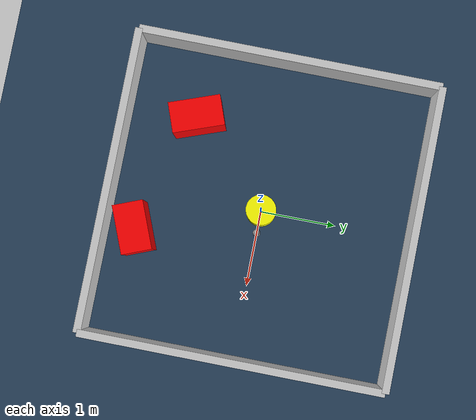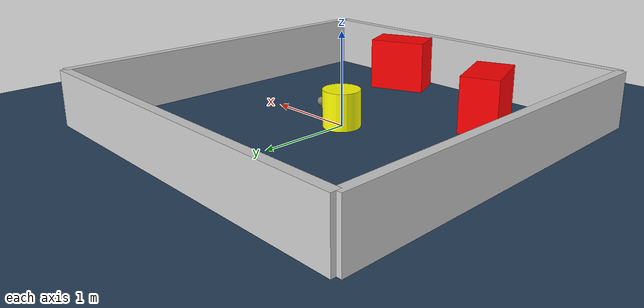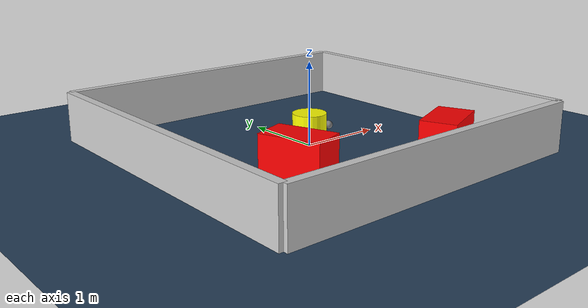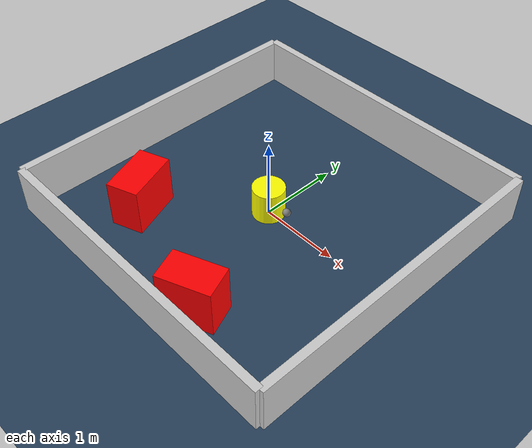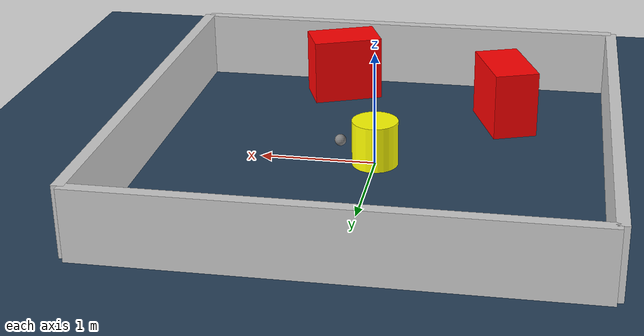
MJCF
<?xml version="1.0" ?>
<mujoco model="generated_environment">
  <option timestep="0.01" integrator="RK4" cone="elliptic"/>
  <default>
    <geom density="1"/>
  </default>
  <asset>
    <texture builtin="gradient" height="3072" rgb1="0.3 0.5 0.7" rgb2="0 0 0" type="skybox" width="512"/>
    <texture builtin="checker" height="300" mark="edge" markrgb="0.8 0.8 0.8" name="groundplane" rgb1="0.2 0.3 0.4" rgb2="0.1 0.2 0.3" type="2d" width="300"/>
    <material name="groundplane" reflectance="0.2" texrepeat="5 5" texture="groundplane" texuniform="true"/>
    <material name="robot" rgba="0.0 1.0 0.0 1"/>
  </asset>
  <worldbody>
    <light dir="0 0 -1" directional="true" pos="0 0 1.5"/>
    <geom condim="4" friction="1.0 0.005 0.001" material="groundplane" name="floor" size="0 0 0.05" type="plane"/>
    <body name="walls">
      <geom name="wall_1" condim="4" pos="-2.0 0.0 0.3" rgba="0.800000011920929 0.800000011920929 0.800000011920929 1.0" size="0.05 2.0 0.3" type="box"/>
      <geom name="wall_2" condim="4" pos="2.0 0.0 0.3" rgba="0.800000011920929 0.800000011920929 0.800000011920929 1.0" size="0.05 2.0 0.3" type="box"/>
      <geom name="wall_3" condim="4" pos="0.0 -2.0 0.3" rgba="0.800000011920929 0.800000011920929 0.800000011920929 1.0" size="2.0 0.05 0.3" type="box"/>
      <geom name="wall_4" condim="4" pos="0.0 2.0 0.3" rgba="0.800000011920929 0.800000011920929 0.800000011920929 1.0" size="2.0 0.05 0.3" type="box"/>
    </body>
    <body name="robot">
      <joint name="joint_x" type="slide" pos="0 0 0" axis="1 0 0"/>
      <joint name="joint_y" type="slide" pos="0 0 0" axis="0 1 0"/>
      <geom name="robot" type="sphere" pos="0.3 0.0 0.2" size="0.05" mass="5." friction="1.0 0.005 0.0001" condim="4" rgba="0.5 0.5 0.5 1.0"/>
      <site name="sensor_ball"/>
    </body>
    <body name="obstacle_movable_1">
      <geom name="obstacle_movable_1" condim="4" pos="0.0 0.0 0.2" euler="0 0 0.0" friction="1.0 0.005 0.001" rgba="1.0 1.0 0.0 1.0" size="0.2 0.2 0.0" type="cylinder" mass="0.1"/>
      <joint type="free"/>
    </body>
    <body name="obstacle_2_static">
      <geom name="obstacle_2_static" condim="4" pos="-1.0480661004937506 -1.0541567416934559 0.3" euler="0 0 110.17632620836756" friction="1.0 0.005 0.001" rgba="1 0 0 1" size="0.3407223974560366 0.2 0.3" type="box"/>
    </body>
    <body name="obstacle_3_static">
      <geom name="obstacle_3_static" condim="4" pos="0.5464999644796433 -1.5766480095725073 0.3" euler="0 0 202.05767101798423" friction="1.0 0.005 0.001" rgba="1 0 0 1" size="0.3229669403777271 0.2 0.3" type="box"/>
    </body>
  </worldbody>
  <actuator>
    <motor name="actuator_x" joint="joint_x" gear="1" ctrlrange="-1 1"/>
    <motor name="actuator_y" joint="joint_y" gear="1" ctrlrange="-1 1"/>
  </actuator>
</mujoco>
